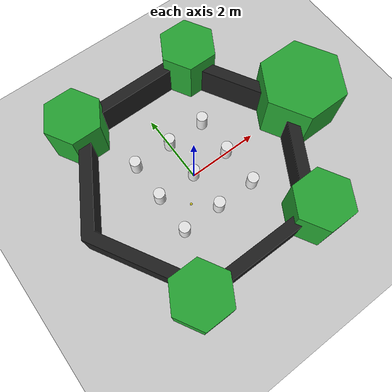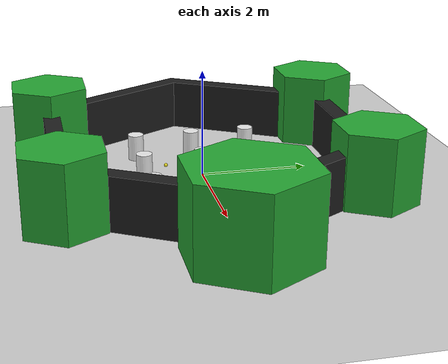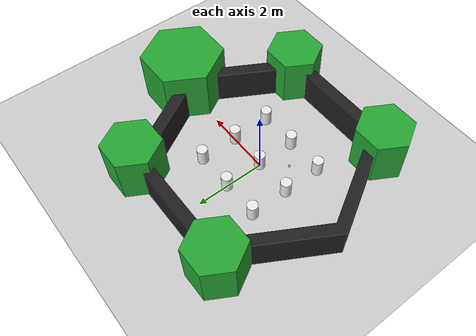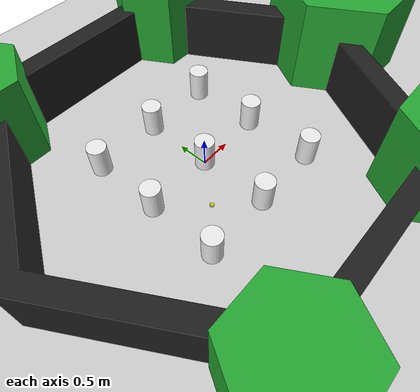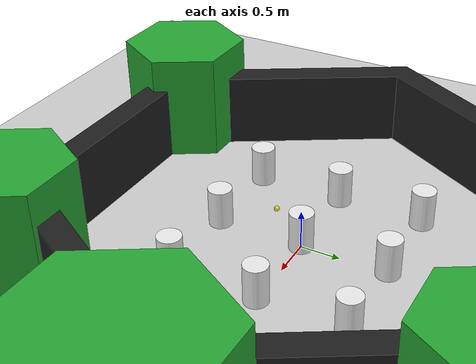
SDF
<sdf version="1.7">
 <world name="default">
  <model name="ground_plane">
   <static>1</static>
   <link name="link">
    <collision name="collision">
     <geometry><plane><normal>0 0 1</normal><size>100 100</size></plane></geometry>
     <surface><friction><ode><mu>100</mu><mu2>50</mu2></ode></friction></surface>
    </collision>
    <visual name="visual">
     <cast_shadows>0</cast_shadows>
     <geometry><plane><normal>0 0 1</normal><size>100 100</size></plane></geometry>
     <material>
      <script><uri>file://media/materials/scripts/gazebo.material</uri><name>Gazebo/Grey</name></script>
     </material>
    </visual>
   </link>
  </model>
  <light name="sun" type="directional">
   <pose>0 0 10 0 -0 0</pose>
   <diffuse>0.8 0.8 0.8 1</diffuse>
   <specular>0.2 0.2 0.2 1</specular>
   <attenuation>
    <range>1000</range>
    <constant>0.9</constant>
    <linear>0.01</linear>
    <quadratic>0.001</quadratic>
   </attenuation>
   <direction>-0.5 0.1 -0.9</direction>
   <spot><inner_angle>0</inner_angle><outer_angle>0</outer_angle><falloff>0</falloff></spot>
  </light>
  <scene><shadows>0</shadows><ambient>0.4 0.4 0.4 1</ambient><background>0.7 0.7 0.7 1</background></scene>
  <physics type="ode">
   <real_time_update_rate>1000</real_time_update_rate>
   <max_step_size>0.001</max_step_size>
   <real_time_factor>1</real_time_factor>
   <ode>
    <solver>
     <type>quick</type>
     <iters>150</iters>
     <precon_iters>0</precon_iters>
     <sor>1.4</sor>
     <use_dynamic_moi_rescaling>1</use_dynamic_moi_rescaling>
    </solver>
    <constraints>
     <cfm>1e-05</cfm>
     <erp>0.2</erp>
     <contact_max_correcting_vel>2000</contact_max_correcting_vel>
     <contact_surface_layer>0.01</contact_surface_layer>
    </constraints>
   </ode>
  </physics>
  <model name="turtlebot3_world">
   <static>1</static>
   <frame name="ros_symbol::__model__" attached_to="ros_symbol::symbol">
    <pose relative_to="__model__">0 0 0 0 -0 0</pose>
   </frame>
   <static>1</static>
   <link name="ros_symbol::symbol">
    <collision name="one_one">
     <pose>-1.1 -1.1 0.25 0 -0 0</pose>
     <geometry><cylinder><radius>0.15</radius><length>0.5</length></cylinder></geometry>
    </collision>
    <visual name="one_one">
     <pose>-1.1 -1.1 0.25 0 -0 0</pose>
     <geometry><cylinder><radius>0.15</radius><length>0.5</length></cylinder></geometry>
     <material>
      <script><uri>file://media/materials/scripts/gazebo.material</uri><name>Gazebo/White</name></script>
     </material>
    </visual>
    <collision name="one_two">
     <pose>-1.1 0 0.25 0 -0 0</pose>
     <geometry><cylinder><radius>0.15</radius><length>0.5</length></cylinder></geometry>
    </collision>
    <visual name="one_two">
     <pose>-1.1 0 0.25 0 -0 0</pose>
     <geometry><cylinder><radius>0.15</radius><length>0.5</length></cylinder></geometry>
     <material>
      <script><uri>file://media/materials/scripts/gazebo.material</uri><name>Gazebo/White</name></script>
     </material>
    </visual>
    <collision name="one_three">
     <pose>-1.1 1.1 0.25 0 -0 0</pose>
     <geometry><cylinder><radius>0.15</radius><length>0.5</length></cylinder></geometry>
    </collision>
    <visual name="one_three">
     <pose>-1.1 1.1 0.25 0 -0 0</pose>
     <geometry><cylinder><radius>0.15</radius><length>0.5</length></cylinder></geometry>
     <material>
      <script><uri>file://media/materials/scripts/gazebo.material</uri><name>Gazebo/White</name></script>
     </material>
    </visual>
    <collision name="two_one">
     <pose>0 -1.1 0.25 0 -0 0</pose>
     <geometry><cylinder><radius>0.15</radius><length>0.5</length></cylinder></geometry>
    </collision>
    <visual name="two_one">
     <pose>0 -1.1 0.25 0 -0 0</pose>
     <geometry><cylinder><radius>0.15</radius><length>0.5</length></cylinder></geometry>
     <material>
      <script><uri>file://media/materials/scripts/gazebo.material</uri><name>Gazebo/White</name></script>
     </material>
    </visual>
    <collision name="two_two">
     <pose>0 0 0.25 0 -0 0</pose>
     <geometry><cylinder><radius>0.15</radius><length>0.5</length></cylinder></geometry>
    </collision>
    <visual name="two_two">
     <pose>0 0 0.25 0 -0 0</pose>
     <geometry><cylinder><radius>0.15</radius><length>0.5</length></cylinder></geometry>
     <material>
      <script><uri>file://media/materials/scripts/gazebo.material</uri><name>Gazebo/White</name></script>
     </material>
    </visual>
    <collision name="two_three">
     <pose>0 1.1 0.25 0 -0 0</pose>
     <geometry><cylinder><radius>0.15</radius><length>0.5</length></cylinder></geometry>
    </collision>
    <visual name="two_three">
     <pose>0 1.1 0.25 0 -0 0</pose>
     <geometry><cylinder><radius>0.15</radius><length>0.5</length></cylinder></geometry>
     <material>
      <script><uri>file://media/materials/scripts/gazebo.material</uri><name>Gazebo/White</name></script>
     </material>
    </visual>
    <collision name="three_one">
     <pose>1.1 -1.1 0.25 0 -0 0</pose>
     <geometry><cylinder><radius>0.15</radius><length>0.5</length></cylinder></geometry>
    </collision>
    <visual name="three_one">
     <pose>1.1 -1.1 0.25 0 -0 0</pose>
     <geometry><cylinder><radius>0.15</radius><length>0.5</length></cylinder></geometry>
     <material>
      <script><uri>file://media/materials/scripts/gazebo.material</uri><name>Gazebo/White</name></script>
     </material>
    </visual>
    <collision name="three_two">
     <pose>1.1 0 0.25 0 -0 0</pose>
     <geometry><cylinder><radius>0.15</radius><length>0.5</length></cylinder></geometry>
    </collision>
    <visual name="three_two">
     <pose>1.1 0 0.25 0 -0 0</pose>
     <geometry><cylinder><radius>0.15</radius><length>0.5</length></cylinder></geometry>
     <material>
      <script><uri>file://media/materials/scripts/gazebo.material</uri><name>Gazebo/White</name></script>
     </material>
    </visual>
    <collision name="three_three">
     <pose>1.1 1.1 0.25 0 -0 0</pose>
     <geometry><cylinder><radius>0.15</radius><length>0.5</length></cylinder></geometry>
    </collision>
    <visual name="three_three">
     <pose>1.1 1.1 0.25 0 -0 0</pose>
     <geometry><cylinder><radius>0.15</radius><length>0.5</length></cylinder></geometry>
     <material>
      <script><uri>file://media/materials/scripts/gazebo.material</uri><name>Gazebo/White</name></script>
     </material>
    </visual>
    <collision name="head">
     <pose>3.5 0 -0.5 0 -0 0</pose>
     <geometry>
      <mesh><uri>model://turtlebot3_world/meshes/hexagon.dae</uri><scale>0.8 0.8 0.8</scale></mesh>
     </geometry>
    </collision>
    <visual name="head">
     <pose>3.5 0 -0.5 0 -0 0</pose>
     <geometry>
      <mesh><uri>model://turtlebot3_world/meshes/hexagon.dae</uri><scale>0.8 0.8 0.8</scale></mesh>
     </geometry>
     <material>
      <script><uri>file://media/materials/scripts/gazebo.material</uri><name>Gazebo/Green</name></script>
     </material>
    </visual>
    <collision name="left_hand">
     <pose>1.8 2.7 0 0 -0 0</pose>
     <geometry>
      <mesh><uri>model://turtlebot3_world/meshes/hexagon.dae</uri><scale>0.55 0.55 0.55</scale></mesh>
     </geometry>
    </collision>
    <visual name="left_hand">
     <pose>1.8 2.7 0 0 -0 0</pose>
     <geometry>
      <mesh><uri>model://turtlebot3_world/meshes/hexagon.dae</uri><scale>0.55 0.55 0.55</scale></mesh>
     </geometry>
     <material>
      <script><uri>file://media/materials/scripts/gazebo.material</uri><name>Gazebo/Green</name></script>
     </material>
    </visual>
    <collision name="right_hand">
     <pose>1.8 -2.7 0 0 -0 0</pose>
     <geometry>
      <mesh><uri>model://turtlebot3_world/meshes/hexagon.dae</uri><scale>0.55 0.55 0.55</scale></mesh>
     </geometry>
    </collision>
    <visual name="right_hand">
     <pose>1.8 -2.7 0 0 -0 0</pose>
     <geometry>
      <mesh><uri>model://turtlebot3_world/meshes/hexagon.dae</uri><scale>0.55 0.55 0.55</scale></mesh>
     </geometry>
     <material>
      <script><uri>file://media/materials/scripts/gazebo.material</uri><name>Gazebo/Green</name></script>
     </material>
    </visual>
    <collision name="left_foot">
     <pose>-1.8 2.7 0 0 -0 0</pose>
     <geometry>
      <mesh><uri>model://turtlebot3_world/meshes/hexagon.dae</uri><scale>0.55 0.55 0.55</scale></mesh>
     </geometry>
    </collision>
    <visual name="left_foot">
     <pose>-1.8 2.7 0 0 -0 0</pose>
     <geometry>
      <mesh><uri>model://turtlebot3_world/meshes/hexagon.dae</uri><scale>0.55 0.55 0.55</scale></mesh>
     </geometry>
     <material>
      <script><uri>file://media/materials/scripts/gazebo.material</uri><name>Gazebo/Green</name></script>
     </material>
    </visual>
    <collision name="right_foot">
     <pose>-1.8 -2.7 0 0 -0 0</pose>
     <geometry>
      <mesh><uri>model://turtlebot3_world/meshes/hexagon.dae</uri><scale>0.55 0.55 0.55</scale></mesh>
     </geometry>
    </collision>
    <visual name="right_foot">
     <pose>-1.8 -2.7 0 0 -0 0</pose>
     <geometry>
      <mesh><uri>model://turtlebot3_world/meshes/hexagon.dae</uri><scale>0.55 0.55 0.55</scale></mesh>
     </geometry>
     <material>
      <script><uri>file://media/materials/scripts/gazebo.material</uri><name>Gazebo/Green</name></script>
     </material>
    </visual>
    <collision name="body">
     <pose>0 0 -0.3 0 0 -1.5708</pose>
     <geometry>
      <mesh><uri>model://turtlebot3_world/meshes/wall.dae</uri><scale>0.25 0.25 0.25</scale></mesh>
     </geometry>
    </collision>
    <visual name="body">
     <pose>0 0 -0.3 0 0 -1.5708</pose>
     <geometry>
      <mesh><uri>model://turtlebot3_world/meshes/wall.dae</uri><scale>0.25 0.25 0.25</scale></mesh>
     </geometry>
     <material>
      <script><uri>file://media/materials/scripts/gazebo.material</uri><name>Gazebo/FlatBlack</name></script>
     </material>
    </visual>
    <pose relative_to="ros_symbol::__model__">0 0 0 0 -0 0</pose>
   </link>
  </model>
  <gravity>0 0 -9.8</gravity>
  <magnetic_field>6e-06 2.3e-05 -4.2e-05</magnetic_field>
  <atmosphere type="adiabatic"/>
  <audio><device>default</device></audio>
  <spherical_coordinates>
   <surface_model>EARTH_WGS84</surface_model>
   <latitude_deg>0</latitude_deg>
   <longitude_deg>0</longitude_deg>
   <elevation>0</elevation>
   <heading_deg>0</heading_deg>
  </spherical_coordinates>
  <model name="ball.model">
   <link name="link">
    <inertial>
     <mass>1</mass>
     <inertia><ixx>0.1</ixx><ixy>0</ixy><ixz>0</ixz><iyy>0.1</iyy><iyz>0</iyz><izz>0.1</izz></inertia>
    </inertial>
    <visual name="visual">
     <geometry><sphere><radius>0.035</radius></sphere></geometry>
     <material>
      <script><name>Gazebo/DarkYellow</name><uri>file://media/materials/scripts/gazebo.material</uri></script>
      <shader type="pixel"><normal_map>__default__</normal_map></shader>
      <ambient>0.3 0.3 0.3 1</ambient>
      <diffuse>0.7 0.7 0.7 1</diffuse>
      <specular>0.01 0.01 0.01 1</specular>
      <emissive>0 0 0 1</emissive>
     </material>
    </visual>
    <collision name="collision">
     <geometry><sphere><radius>0.035</radius></sphere></geometry>
     <surface>
      <friction>
       <ode><mu>1</mu><mu2>1</mu2><fdir1>0 0 0</fdir1><slip1>0</slip1><slip2>0</slip2></ode>
       <torsional>
        <coefficient>1</coefficient>
        <patch_radius>0</patch_radius>
        <surface_radius>0</surface_radius>
        <use_patch_radius>1</use_patch_radius>
        <ode><slip>0</slip></ode>
       </torsional>
      </friction>
      <bounce><restitution_coefficient>0</restitution_coefficient><threshold>1e+06</threshold></bounce>
      <contact>
       <collide_without_contact>0</collide_without_contact>
       <collide_without_contact_bitmask>1</collide_without_contact_bitmask>
       <collide_bitmask>1</collide_bitmask>
       <ode>
        <soft_cfm>0</soft_cfm>
        <soft_erp>0.2</soft_erp>
        <kp>1e+13</kp>
        <kd>1</kd>
        <max_vel>0.01</max_vel>
        <min_depth>0</min_depth>
       </ode>
       <bullet>
        <split_impulse>1</split_impulse>
        <split_impulse_penetration_threshold>-0.01</split_impulse_penetration_threshold>
        <soft_cfm>0</soft_cfm>
        <soft_erp>0.2</soft_erp>
        <kp>1e+13</kp>
        <kd>1</kd>
       </bullet>
      </contact>
     </surface>
    </collision>
   </link>
   <static>0</static>
   <pose>-0.53331 -0.605069 0.035 0 -0 0</pose>
  </model>
 </world>
</sdf>
